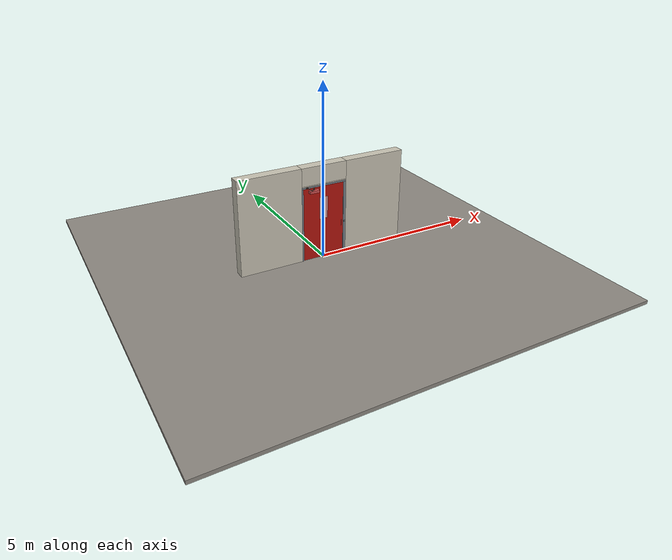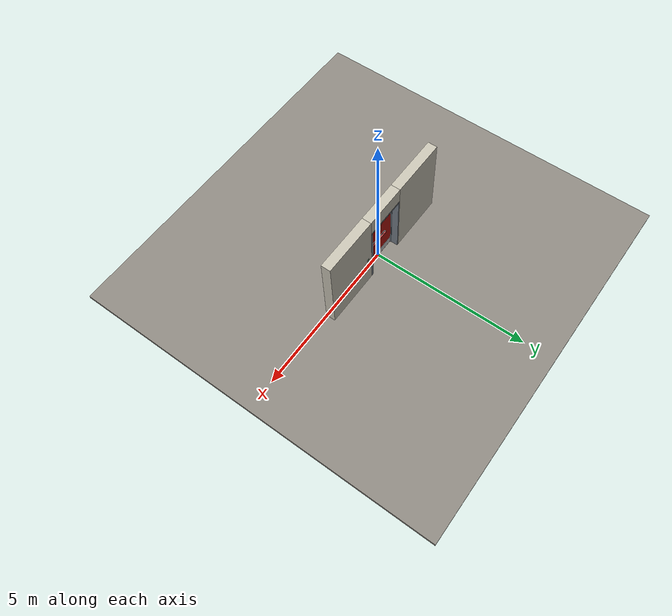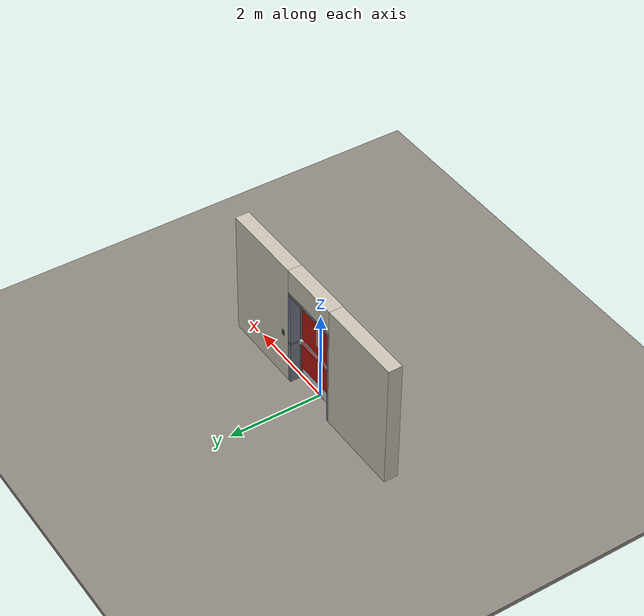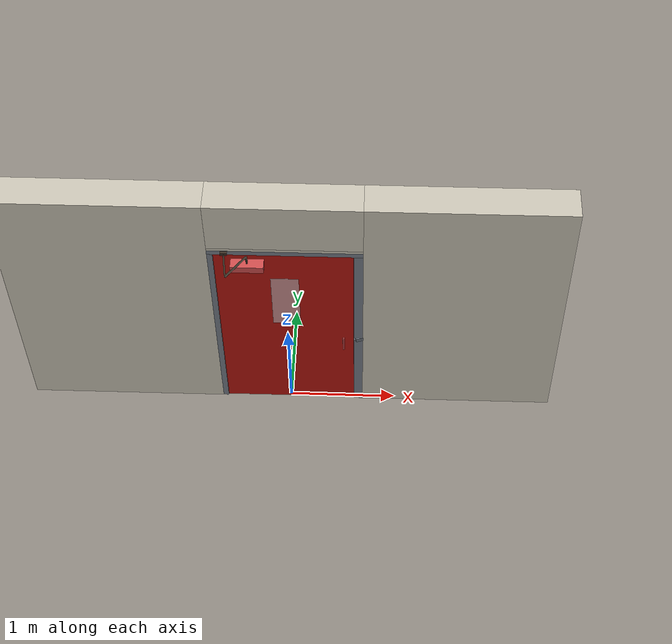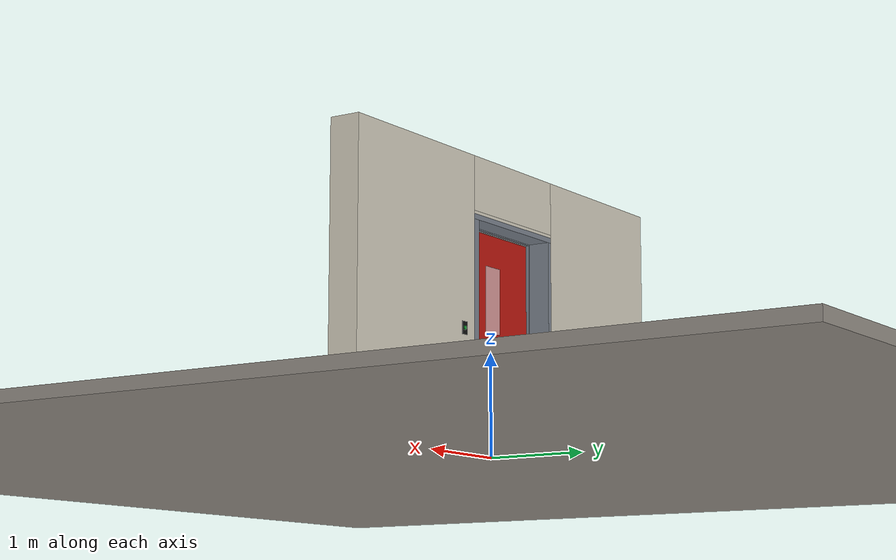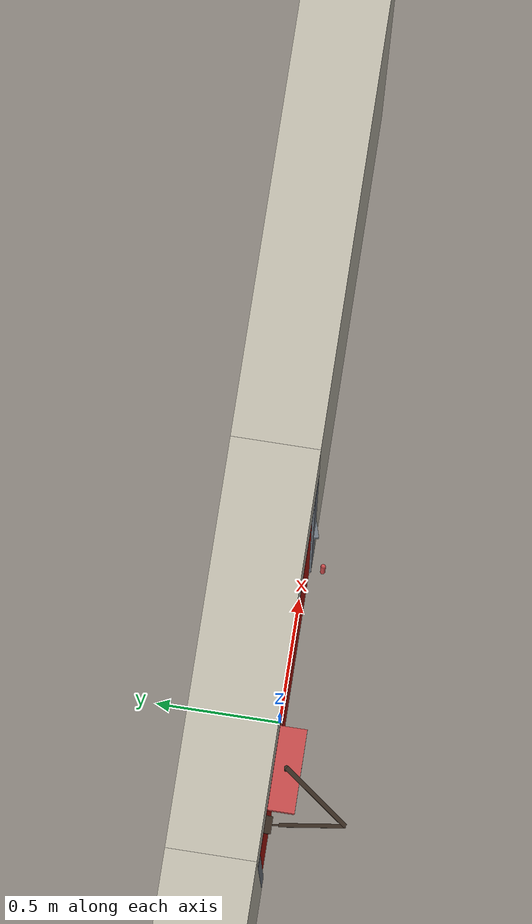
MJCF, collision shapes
<?xml version="1.0" ?>
<mujoco model="db0154_swing_single_full">
  <compiler angle="radian" meshdir="../../hardware" texturedir="../../textures" autolimits="true" inertiafromgeom="false"/>
  <option timestep="0.002" integrator="implicitfast" cone="elliptic" impratio="10" noslip_iterations="3">
    <flag multiccd="enable"/>
  </option>
  <size memory="16M"/>
  <default>
    <geom condim="4" solref="0.005 1" solimp="0.95 0.99 0.001"/>
    <joint solreflimit="0.005 1" solimplimit="0.95 0.99 0.001"/>
    <tendon solreflimit="0.005 1"/>
    <equality solref="0.002 1"/>
  </default>
  <visual>
    <headlight ambient="0.4 0.4 0.4" diffuse="0.7 0.7 0.7" specular="0.2 0.2 0.2"/>
    <quality shadowsize="4096"/>
    <map znear="0.01" zfar="60"/>
  </visual>
  <asset>
    <mesh name="closer_body_fdc4667657" file="closer_body_fdc4667657.obj"/>
    <mesh name="exit_sign_a6449bfa2c" file="exit_sign_a6449bfa2c.obj"/>
    <mesh name="hinge_e22b26c0c1" file="hinge_e22b26c0c1.obj"/>
    <mesh name="hinge_jamb_e1d088f8dc" file="hinge_jamb_e1d088f8dc.obj"/>
    <mesh name="pull_1e5d69a91a" file="pull_1e5d69a91a.obj"/>
    <mesh name="touchbar_pad_53c3d671cc" file="touchbar_pad_53c3d671cc.obj"/>
    <material name="mat_floor" rgba="0.55 0.53 0.5 1" specular="0.2" shininess="0.15" reflectance="0"/>
    <material name="mat_wall" rgba="0.78 0.76 0.7 1" specular="0.2" shininess="0.1" reflectance="0"/>
    <material name="mat_leaf" rgba="0.7 0.08 0.05 1" specular="0.2" shininess="0.35" reflectance="0"/>
    <material name="mat_glass" rgba="0.9 0.93 0.95 0.6" specular="0.2" shininess="0.5" reflectance="0.1"/>
    <material name="mat_hinge" rgba="0.65 0.66 0.68 1" specular="0.74" shininess="0.5" reflectance="0.36"/>
    <material name="mat_op_stainless" rgba="0.75 0.76 0.77 1" specular="0.8" shininess="0.65" reflectance="0.4"/>
    <material name="mat_bolt" rgba="0.75 0.76 0.77 1" specular="0.8" shininess="0.65" reflectance="0.4"/>
    <material name="mat_frame" rgba="0.45 0.48 0.52 1" specular="0.32" shininess="0.6" reflectance="0.08"/>
    <material name="mat_seal" rgba="0.1 0.1 0.1 1" specular="0.2" shininess="0.1" reflectance="0"/>
    <material name="mat_closer" rgba="0.22 0.17 0.13 1" specular="0.8" shininess="0.6" reflectance="0.4"/>
    <material name="mat_kick" rgba="0.75 0.76 0.77 1" specular="0.8" shininess="0.65" reflectance="0.4"/>
    <material name="mat_exit_sign" rgba="0.85 0.1 0.1 1" specular="0.2" shininess="0.6" reflectance="0"/>
    <material name="mat_sign_bracket" rgba="0.8 0.81 0.83 1" specular="0.8" shininess="0.6" reflectance="0.4"/>
    <material name="mat_wallreader" rgba="0.05 0.05 0.05 1" specular="0.38" shininess="0.3" reflectance="0.12"/>
    <material name="mat_rex" rgba="0.1 0.6 0.2 1" specular="0.2" shininess="0.6" reflectance="0"/>
    <texture name="skybox" type="skybox" builtin="gradient" rgb1="0.6 0.7 0.85" rgb2="0.9 0.92 0.95" width="256" height="256"/>
  </asset>
  <worldbody>
    <light name="sun" pos="1.5 -2.5 4" dir="-0.3 0.5 -0.8" directional="true" diffuse="0.8 0.8 0.8" specular="0.3 0.3 0.3" castshadow="true"/>
    <light name="fill" pos="-1.5 2.5 3" dir="0.3 -0.5 -0.7" directional="true" diffuse="0.35 0.35 0.4" castshadow="false"/>
    <camera name="robot_view" pos="0 -2.516812 1.812087" xyaxes="1 0 0 0 0.26963 0.962964" fovy="52"/>
    <camera name="far_view" pos="0 2.758812 1.812087" xyaxes="-1 0 0 0 -0.26963 0.962964" fovy="52"/>
    <camera name="iso" pos="2.004737 -2.094762 2.234138" xyaxes="0.741536 0.670913 0 -0.242917 0.268487 0.932151" fovy="46"/>
    <camera name="detail_handle" pos="0.699 -0.882 1.245" xyaxes="0.97561 0.219512 0 -0.070934 0.315262 0.94635" fovy="38"/>
    <geom name="floor" type="box" size="6 6 0.05" pos="0 0 -0.05" material="mat_floor" group="0" contype="1" conaffinity="1" friction="0.8 0.005 0.0001" density="2400"/>
    <geom name="wall_left" type="box" size="0.9185 0.15 1.3735" pos="-1.5815 0.121 1.3735" material="mat_wall" group="0" contype="1" conaffinity="1" friction="0.6 0.005 0.0001" density="800"/>
    <geom name="wall_right" type="box" size="0.9035 0.15 1.3735" pos="1.5965 0.121 1.3735" material="mat_wall" group="0" contype="1" conaffinity="1" friction="0.6 0.005 0.0001" density="800"/>
    <geom name="wall_header" type="box" size="0.678 0.15 0.26" pos="0.015 0.121 2.487" material="mat_wall" group="0" contype="1" conaffinity="1" friction="0.6 0.005 0.0001" density="800"/>
    <geom name="hinge_0_jamb" type="mesh" mesh="hinge_jamb_e1d088f8dc" pos="-0.61 -0.029 0.259" material="mat_hinge" group="1" contype="0" conaffinity="0" density="7850"/>
    <geom name="hinge_1_jamb" type="mesh" mesh="hinge_jamb_e1d088f8dc" pos="-0.61 -0.029 0.827" material="mat_hinge" group="1" contype="0" conaffinity="0" density="7850"/>
    <geom name="hinge_2_jamb" type="mesh" mesh="hinge_jamb_e1d088f8dc" pos="-0.61 -0.029 1.395" material="mat_hinge" group="1" contype="0" conaffinity="0" density="7850"/>
    <geom name="hinge_3_jamb" type="mesh" mesh="hinge_jamb_e1d088f8dc" pos="-0.61 -0.029 1.963" material="mat_hinge" group="1" contype="0" conaffinity="0" density="7850"/>
    <geom name="jamb_hinge" type="box" size="0.025 0.15 1.0735" pos="-0.638 0.121 1.0735" material="mat_frame" group="0" contype="1" conaffinity="1" friction="0.6 0.005 0.0001" density="300"/>
    <geom name="strike_965_wall_n" type="box" size="0.04 0.108 0.02" pos="0.653 0.163 0.965" material="mat_frame" group="0" contype="1" conaffinity="1" friction="0.6 0.005 0.0001" density="300"/>
    <geom name="strike_965_wall_p" type="box" size="0.04 0.008 0.02" pos="0.653 0.025 0.965" material="mat_frame" group="0" contype="1" conaffinity="1" friction="0.6 0.005 0.0001" density="300"/>
    <geom name="strike_965_ramp" type="box" size="0.04 0.034482 0.02" pos="0.661281 -0.0044 0.965" quat="0.989198 0 0 0.146587" material="mat_frame" group="0" contype="1" conaffinity="1" friction="0.12 0.005 0.0001" density="300"/>
    <geom name="strike_965_back" type="box" size="0.0285 0.011 0.02" pos="0.6645 0.044 0.965" material="mat_frame" group="0" contype="1" conaffinity="1" friction="0.6 0.005 0.0001" density="300"/>
    <geom name="jamb_strike_0" type="box" size="0.04 0.15 0.4725" pos="0.653 0.121 0.4725" material="mat_frame" group="0" contype="1" conaffinity="1" friction="0.6 0.005 0.0001" density="300"/>
    <geom name="jamb_strike_1" type="box" size="0.04 0.15 0.581" pos="0.653 0.121 1.566" material="mat_frame" group="0" contype="1" conaffinity="1" friction="0.6 0.005 0.0001" density="300"/>
    <geom name="jamb_head" type="box" size="0.678 0.15 0.025" pos="0.015 0.121 2.172" material="mat_frame" group="0" contype="1" conaffinity="1" friction="0.6 0.005 0.0001" density="300"/>
    <geom name="head_stud" type="box" size="0.678 0.15 0.015" pos="0.015 0.121 2.212" material="mat_wall" group="0" contype="1" conaffinity="1" friction="0.6 0.005 0.0001" density="500"/>
    <geom name="stop_hinge" type="box" size="0.0055 0.016 1.0735" pos="-0.6075 0.0385 1.0735" material="mat_frame" group="0" contype="1" conaffinity="1" friction="0.6 0.005 0.0001" density="300"/>
    <geom name="stop_strike" type="box" size="0.0055 0.016 0.45875" pos="0.6075 0.0385 0.45875" material="mat_frame" group="0" contype="1" conaffinity="1" friction="0.6 0.005 0.0001" density="300"/>
    <geom name="stop_strike_1" type="box" size="0.0055 0.016 0.56725" pos="0.6075 0.0385 1.57975" material="mat_frame" group="0" contype="1" conaffinity="1" friction="0.6 0.005 0.0001" density="300"/>
    <geom name="stop_head" type="box" size="0.613 0.016 0.0055" pos="0 0.0385 2.1415" material="mat_frame" group="0" contype="1" conaffinity="1" friction="0.6 0.005 0.0001" density="300"/>
    <geom name="seal_hinge" type="box" size="0.004 0.0025 1.0735" pos="-0.61 0.0245 1.0735" material="mat_seal" group="1" contype="0" conaffinity="0" density="1100"/>
    <geom name="seal_strike" type="box" size="0.004 0.0025 0.45875" pos="0.61 0.0245 0.45875" material="mat_seal" group="1" contype="0" conaffinity="0" density="1100"/>
    <geom name="seal_strike_1" type="box" size="0.004 0.0025 0.56725" pos="0.61 0.0245 1.57975" material="mat_seal" group="1" contype="0" conaffinity="0" density="1100"/>
    <geom name="seal_head" type="box" size="0.593 0.0025 0.008" pos="0 0.0245 2.135" material="mat_seal" group="1" contype="0" conaffinity="0" density="1100"/>
    <geom name="closer_bracket" type="box" size="0.03 0.012 0.014" pos="-0.513 -0.041 2.177" material="mat_closer" group="1" contype="0" conaffinity="0" density="2700"/>
    <geom name="exit_sign" type="mesh" mesh="exit_sign_a6449bfa2c" pos="0 0.15 2.447" material="mat_exit_sign" group="2" contype="0" conaffinity="0" density="500"/>
    <geom name="exit_sign_bracket" type="box" size="0.05775 0.00875 0.0605" pos="0 0.15 2.287" material="mat_sign_bracket" group="2" contype="0" conaffinity="0" density="7850"/>
    <geom name="rex_plate" type="box" size="0.04 0.003 0.06" pos="0.863 0.274 1.1" material="mat_wallreader" group="1" contype="0" conaffinity="0" density="1000"/>
    <site name="approach_point" pos="0 -1.5 0" quat="1 0 0 0" size="0.05" rgba="0.2 0.9 0.2 0.5" group="4"/>
    <site name="goal_point" pos="0 1.5 0" quat="1 0 0 0" size="0.05" rgba="0.2 0.9 0.2 0.5" group="4"/>
    <site name="door_plane_center" pos="0 0 1.0735" quat="1 0 0 0" size="0.02" rgba="0.2 0.9 0.2 0.5" group="4"/>
    <body name="rex_button" pos="0.863 0.277 1.1">
      <inertial pos="0 0.004 0" mass="0.010053" quat="0 0 0.707107 -0.707107" diaginertia="0.000001059 0.000001059 0.000002011"/>
      <joint name="rex_button_slide" type="slide" axis="0 -1 0" limited="true" range="0 0.004" damping="1" stiffness="1500" springref="-0.004" armature="0.1"/>
      <geom name="rex_button_geom" type="cylinder" size="0.02 0.004" pos="0 0.004 0" quat="0.707107 -0.707107 0 0" material="mat_rex" group="0" contype="1" conaffinity="1" friction="0.6 0.005 0.0001" density="1000"/>
    </body>
    <body name="leaf" pos="-0.613 0 0">
      <inertial pos="0.561282 -0.011156 1.207393" mass="65.866744" quat="0.532528 0.534855 0.47522 -0.452228" diaginertia="7.672980801 31.799011581 39.36167876"/>
      <joint name="leaf_hinge" type="hinge" axis="0 0 -1" pos="0.003 -0.029 0" limited="true" range="0 1.745329" solreflimit="0.02 1" damping="12.850995" frictionloss="4.40113" stiffness="14.998762" springref="-3.132925" armature="0.02"/>
      <geom name="leaf_slab" type="box" size="0.6095 0.022 1.067" pos="0.6125 0 1.076" material="mat_leaf" group="0" contype="1" conaffinity="1" friction="0.4 0.005 0.0001" density="1"/>
      <geom name="leaf_glass_0" type="box" size="0.125 0.0228 0.3201" pos="0.6125 0 1.5028" material="mat_glass" group="1" contype="0" conaffinity="0" density="1"/>
      <geom name="hinge_0" type="mesh" mesh="hinge_e22b26c0c1" pos="0.003 -0.029 0.259" material="mat_hinge" group="1" contype="0" conaffinity="0" density="7850"/>
      <geom name="hinge_1" type="mesh" mesh="hinge_e22b26c0c1" pos="0.003 -0.029 0.827" material="mat_hinge" group="1" contype="0" conaffinity="0" density="7850"/>
      <geom name="hinge_2" type="mesh" mesh="hinge_e22b26c0c1" pos="0.003 -0.029 1.395" material="mat_hinge" group="1" contype="0" conaffinity="0" density="7850"/>
      <geom name="hinge_3" type="mesh" mesh="hinge_e22b26c0c1" pos="0.003 -0.029 1.963" material="mat_hinge" group="1" contype="0" conaffinity="0" density="7850"/>
      <geom name="leaf_exit_device_rail" type="box" size="0.416175 0.006 0.025" pos="0.725825 0.028 0.965" material="mat_op_stainless" group="0" contype="1" conaffinity="1" friction="0.6 0.005 0.0001" density="3000"/>
      <geom name="leaf_exit_device_rail_end_n" type="box" size="0.01 0.0325 0.025" pos="0.31965 0.0545 0.965" material="mat_op_stainless" group="0" contype="1" conaffinity="1" friction="0.6 0.005 0.0001" density="3000"/>
      <geom name="leaf_exit_device_rail_end_p" type="box" size="0.01 0.0325 0.025" pos="1.132 0.0545 0.965" material="mat_op_stainless" group="0" contype="1" conaffinity="1" friction="0.6 0.005 0.0001" density="3000"/>
      <geom name="leaf_exit_device_case" type="box" size="0.034 0.034125 0.0375" pos="1.176 0.056125 0.965" material="mat_op_stainless" group="0" contype="1" conaffinity="1" friction="0.6 0.005 0.0001" density="3000"/>
      <geom name="leaf_far_pull_n" type="mesh" mesh="pull_1e5d69a91a" pos="1.132 -0.022 0.965" quat="0.707107 0.707107 0 0" material="mat_op_stainless" group="1" contype="0" conaffinity="0" density="3000"/>
      <geom name="leaf_far_pull_col_n" type="capsule" size="0.0095 0.08" pos="1.132 -0.082 0.965" material="mat_op_stainless" group="3" contype="1" conaffinity="1" rgba="0.8 0.3 0.3 0.25" friction="0.7 0.01 0.0001" density="3000"/>
      <geom name="closer_body" type="mesh" mesh="closer_body_fdc4667657" pos="0.3 -0.022 2.054" quat="0.707107 0.707107 0 0" material="mat_closer" group="1" contype="0" conaffinity="0" density="2000"/>
      <geom name="closer_body_col" type="box" size="0.145 0.05 0.035" pos="0.3 -0.072 2.054" material="mat_closer" group="3" contype="1" conaffinity="1" rgba="0.8 0.3 0.3 0.25" friction="0.6 0.005 0.0001" density="2000"/>
      <geom name="closer_pinion_shaft" type="cylinder" size="0.008 0.0615" pos="0.3 -0.072 2.1155" material="mat_closer" group="1" contype="0" conaffinity="0" density="2700"/>
      <geom name="kick_plate_p" type="box" size="0.5795 0.0008 0.125" pos="0.6125 0.0228 0.144" material="mat_kick" group="2" contype="0" conaffinity="0" density="7900"/>
      <site name="leaf_far_pull_grip_n" pos="1.132 -0.082 0.965" quat="1 0 0 0" size="0.012" rgba="0.2 0.9 0.2 0.5" group="4"/>
      <site name="leaf_edge_mid" pos="1.222 0 1.067" quat="1 0 0 0" size="0.02" rgba="0.2 0.9 0.2 0.5" group="4"/>
      <body name="leaf_exit_device" pos="0.725825 0.022 0.965">
        <inertial pos="0 0.05 0" mass="6.369435" quat="0.707107 -0.707107 0 0" diaginertia="0.00155255 0.328687433 0.329284568"/>
        <joint name="leaf_exit_device_slide" type="slide" axis="0 -1 0" limited="true" range="0 0.016" damping="176.89909" frictionloss="0.5" stiffness="1200" springref="-0.015" armature="0.15"/>
        <geom name="leaf_exit_device_pad" type="mesh" mesh="touchbar_pad_53c3d671cc" pos="0 0 0" quat="-0.707107 0.707107 0 0" material="mat_op_stainless" group="1" contype="0" conaffinity="0" density="3000"/>
        <geom name="leaf_exit_device_pad_col" type="box" size="0.393175 0.015 0.0225" pos="0 0.05 0" material="mat_op_stainless" group="3" contype="1" conaffinity="1" rgba="0.8 0.3 0.3 0.25" friction="0.8 0.01 0.0001" density="3000"/>
        <site name="leaf_exit_device_push" pos="0 0.065 0" quat="1 0 0 0" size="0.015" rgba="0.2 0.9 0.2 0.5" group="4"/>
      </body>
      <body name="leaf_latch_bolt" pos="1.222 0.044 0.965">
        <inertial pos="-0.0055 0 0" mass="0.102826" quat="0.92388 -0.382683 0 0" diaginertia="0.000004365 0.000018287 0.000018287"/>
        <joint name="leaf_latch_bolt_slide" type="slide" axis="-1 0 0" limited="true" range="0 0.019" damping="2" frictionloss="0.3" stiffness="800" springref="-0.01" armature="0.1"/>
        <geom name="leaf_latch_bolt_capsule" type="capsule" size="0.0095 0.015" pos="-0.0055 0 0" quat="0.707107 0 0.707107 0" material="mat_bolt" group="0" contype="1" conaffinity="1" friction="0.2 0.005 0.0001" density="8500"/>
      </body>
      <body name="closer_arm_main" pos="0.3 -0.072 2.177" quat="0.454107 0 0 -0.890947">
        <inertial pos="0.14 0 0" mass="0.12096" quat="1 0 0 0" diaginertia="0.000003588 0.00079128 0.000792852"/>
        <joint name="closer_pinion" type="hinge" axis="0 0 1" limited="false" damping="0.01" armature="0.002"/>
        <geom name="closer_arm_main_geom" type="box" size="0.14 0.008 0.005" pos="0.14 0 0" material="mat_closer" group="1" contype="0" conaffinity="0" density="2700"/>
        <body name="closer_arm_fore" pos="0.28 0 0" quat="-0.373215 0 0 0.927745">
          <inertial pos="0.128088 0 0" mass="0.076531" quat="1 0 0 0" diaginertia="0.000001771 0.000437665 0.000438201"/>
          <joint name="closer_elbow" type="hinge" axis="0 0 1" limited="false" damping="0.01" armature="0.002"/>
          <geom name="closer_arm_fore_geom" type="box" size="0.1125 0.007 0.004" pos="0.1125 0 0" material="mat_closer" group="1" contype="0" conaffinity="0" density="2700"/>
          <geom name="closer_fore_neck" type="box" size="0.0175 0.003 0.003" pos="0.2425 0 0" material="mat_closer" group="1" contype="0" conaffinity="0" density="2700"/>
          <geom name="closer_fore_pivot" type="cylinder" size="0.005 0.012" pos="0.26 0 0" material="mat_closer" group="1" contype="0" conaffinity="0" density="2700"/>
        </body>
      </body>
    </body>
  </worldbody>
  <tendon>
    <fixed name="leaf_latch_bolt_coupling" limited="true" range="0 10">
      <joint joint="leaf_latch_bolt_slide" coef="1"/>
      <joint joint="leaf_exit_device_slide" coef="-1.357143"/>
    </fixed>
  </tendon>
  <equality>
    <connect name="closer_arm_connect" body1="closer_arm_fore" body2="world" anchor="0.26 0 0" active="true"/>
  </equality>
  <contact>
    <exclude body1="closer_arm_main" body2="leaf"/>
    <exclude body1="closer_arm_fore" body2="leaf"/>
    <exclude body1="closer_arm_main" body2="closer_arm_fore"/>
  </contact>
  <sensor>
    <jointpos name="leaf_hinge_pos" joint="leaf_hinge"/>
    <jointvel name="leaf_hinge_vel" joint="leaf_hinge"/>
    <jointpos name="leaf_exit_device_slide_pos" joint="leaf_exit_device_slide"/>
    <jointvel name="leaf_exit_device_slide_vel" joint="leaf_exit_device_slide"/>
    <jointpos name="leaf_latch_bolt_slide_pos" joint="leaf_latch_bolt_slide"/>
    <jointvel name="leaf_latch_bolt_slide_vel" joint="leaf_latch_bolt_slide"/>
    <jointpos name="rex_button_slide_pos" joint="rex_button_slide"/>
    <jointvel name="rex_button_slide_vel" joint="rex_button_slide"/>
  </sensor>
</mujoco>
